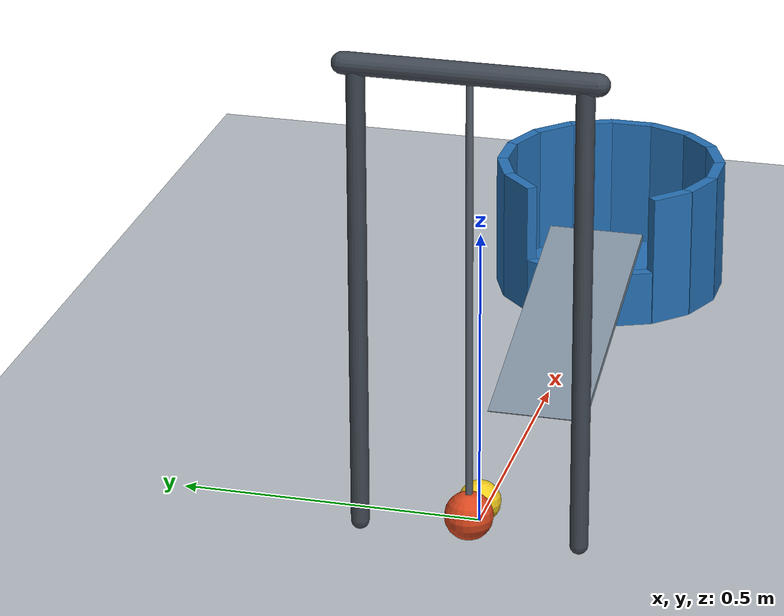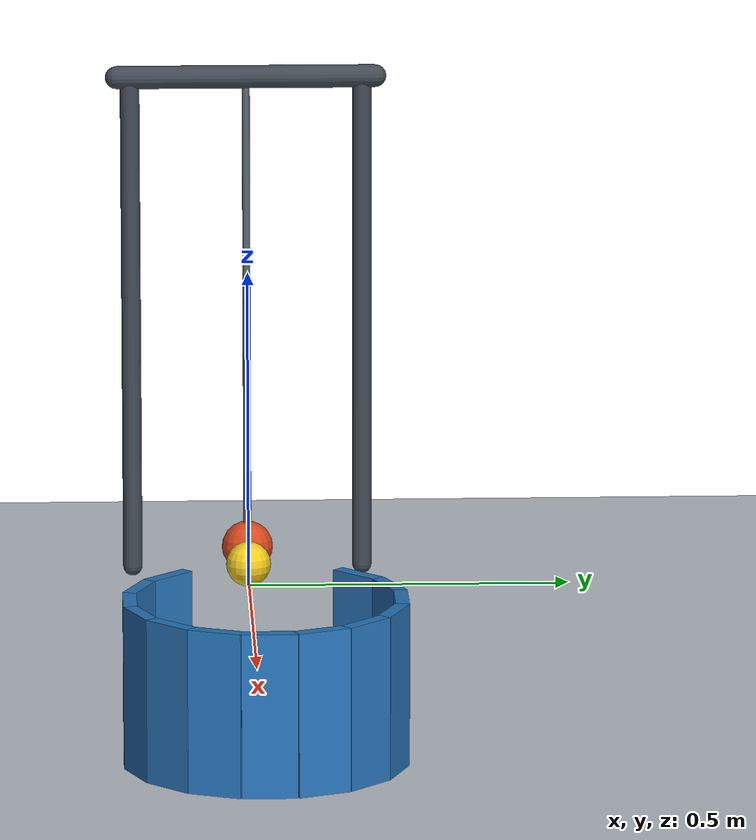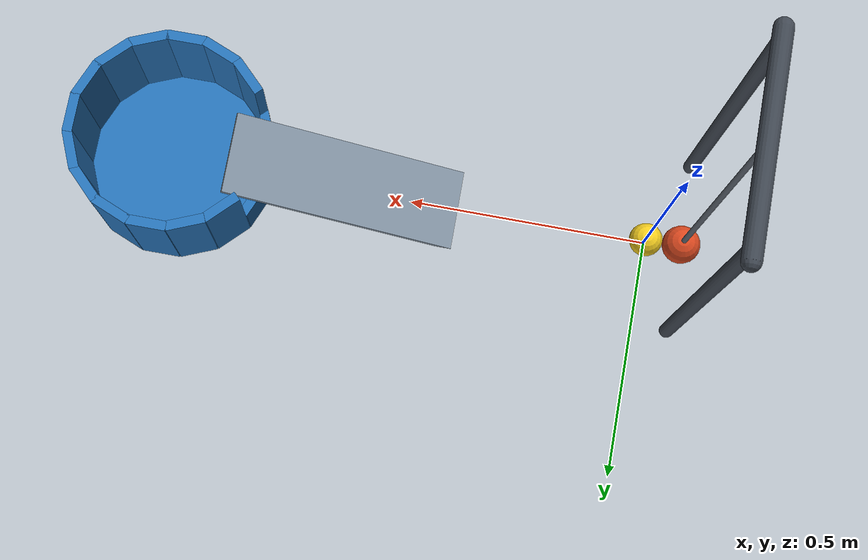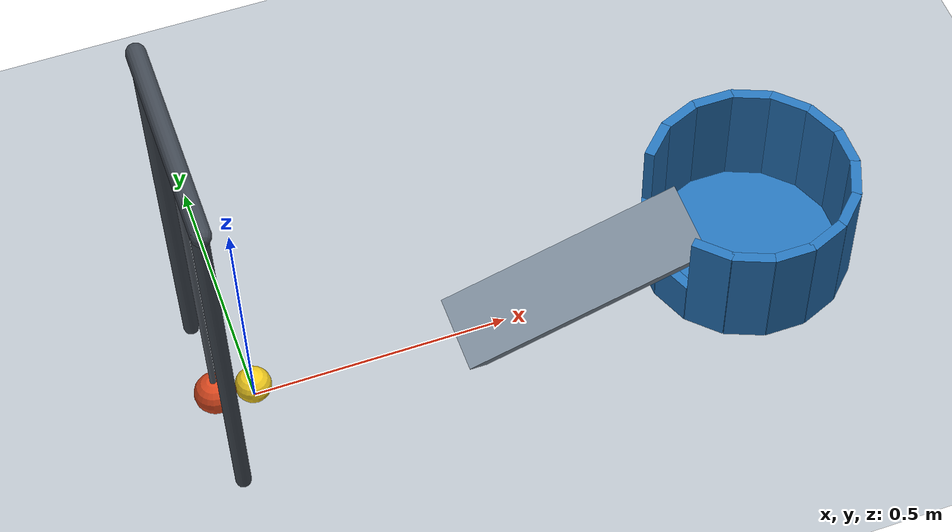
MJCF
<mujoco model="pendulum_ball_into_cup">
  <compiler angle="radian" inertiafromgeom="true"/>
  <option timestep="0.002" gravity="0 0 -9.81" integrator="implicitfast" iterations="100" cone="elliptic"/>
  <size njmax="2000" nconmax="300"/>
  <visual>
    <headlight ambient="0.4 0.4 0.4" diffuse="0.7 0.7 0.7" specular="0.2 0.2 0.2"/>
  </visual>

  <worldbody>
    <light name="overhead_light" pos="0.5 -1 3" dir="0 0 -1"/>
    <geom name="floor" type="plane" size="3 2 0.1" friction="0.5 0.005 0.0001" condim="3" solref="0.005 1" rgba="0.72 0.75 0.78 1"/>

    <body name="stand" pos="-0.073 0 0">
      <geom name="stand_left_post" type="capsule" fromto="0 -0.18 0.015 0 -0.18 0.795" size="0.015" rgba="0.25 0.28 0.32 1"/>
      <geom name="stand_right_post" type="capsule" fromto="0 0.18 0.015 0 0.18 0.795" size="0.015" rgba="0.25 0.28 0.32 1"/>
      <geom name="stand_crossbar" type="capsule" fromto="0 -0.20 0.795 0 0.20 0.795" size="0.018" rgba="0.25 0.28 0.32 1"/>
    </body>

    <!-- Positive hinge angle raises the bob to the left of the ball. -->
    <body name="pendulum" pos="-0.073 0 0.795">
      <joint name="pendulum_hinge" type="hinge" axis="0 1 0" damping="0.003"/>
      <geom name="pendulum_rod" type="capsule" fromto="0 0 -0.015 0 0 -0.715" size="0.006" mass="0.025" friction="0.5 0.005 0.0001" solref="0.005 1" rgba="0.35 0.38 0.42 1"/>
      <geom name="pendulum_bob" type="sphere" pos="0 0 -0.75" size="0.04" mass="0.6" friction="0.5 0.005 0.0001" solref="0.005 1" rgba="0.85 0.28 0.12 1"/>
    </body>

    <body name="ball" pos="0 0 0.035">
      <freejoint name="ball_free"/>
      <geom name="ball" type="sphere" size="0.035" mass="0.04" friction="0.5 0.005 0.0001" condim="3" solref="0.005 1" rgba="0.95 0.8 0.12 1"/>
    </body>

    <!-- The ramp rises from floor level and bridges the cup's low front rim. -->
    <body name="entry_ramp" pos="0 0 0">
      <geom name="entry_ramp_surface" type="box" pos="0.641790 0 0.069273" euler="0 -0.302885 0" size="0.251446 0.085 0.006" friction="0.6 0.005 0.0001" condim="3" solref="0.005 1" rgba="0.50 0.56 0.62 1"/>
    </body>

    <!-- Cup centre is 1 m along the floor from the ball's starting location. -->
    <!-- Primitive wall segments form a closed cup with a lowered entrance rim. -->
    <body name="cup" pos="1 0 0">
      <geom name="cup_bottom" type="cylinder" pos="0 0 0.003" size="0.205 0.003" friction="0.8 0.01 0.002" condim="6" solref="0.005 1" rgba="0.15 0.45 0.72 1"/>

      <geom name="cup_wall_00" type="box" pos="0.195000 0 0.120" euler="0 0 0" size="0.010 0.040 0.120" friction="0.8 0.01 0.002" condim="6" solref="0.005 1" rgba="0.15 0.45 0.72 1"/>
      <geom name="cup_wall_01" type="box" pos="0.180157 0.074624 0.120" euler="0 0 0.392699" size="0.010 0.040 0.120" friction="0.8 0.01 0.002" condim="6" solref="0.005 1" rgba="0.15 0.45 0.72 1"/>
      <geom name="cup_wall_02" type="box" pos="0.137886 0.137886 0.120" euler="0 0 0.785398" size="0.010 0.040 0.120" friction="0.8 0.01 0.002" condim="6" solref="0.005 1" rgba="0.15 0.45 0.72 1"/>
      <geom name="cup_wall_03" type="box" pos="0.074624 0.180157 0.120" euler="0 0 1.178097" size="0.010 0.040 0.120" friction="0.8 0.01 0.002" condim="6" solref="0.005 1" rgba="0.15 0.45 0.72 1"/>
      <geom name="cup_wall_04" type="box" pos="0 0.195000 0.120" euler="0 0 1.570796" size="0.010 0.040 0.120" friction="0.8 0.01 0.002" condim="6" solref="0.005 1" rgba="0.15 0.45 0.72 1"/>
      <geom name="cup_wall_05" type="box" pos="-0.074624 0.180157 0.120" euler="0 0 1.963495" size="0.010 0.040 0.120" friction="0.8 0.01 0.002" condim="6" solref="0.005 1" rgba="0.15 0.45 0.72 1"/>
      <geom name="cup_wall_06" type="box" pos="-0.137886 0.137886 0.120" euler="0 0 2.356194" size="0.010 0.040 0.120" friction="0.8 0.01 0.002" condim="6" solref="0.005 1" rgba="0.15 0.45 0.72 1"/>

      <geom name="cup_wall_07" type="box" pos="-0.180157 0.074624 0.050" euler="0 0 2.748894" size="0.010 0.040 0.050" friction="0.8 0.01 0.002" condim="6" solref="0.005 1" rgba="0.15 0.45 0.72 1"/>
      <geom name="cup_wall_08" type="box" pos="-0.195000 0 0.050" euler="0 0 3.141593" size="0.010 0.040 0.050" friction="0.8 0.01 0.002" condim="6" solref="0.005 1" rgba="0.15 0.45 0.72 1"/>
      <geom name="cup_wall_09" type="box" pos="-0.180157 -0.074624 0.050" euler="0 0 3.534292" size="0.010 0.040 0.050" friction="0.8 0.01 0.002" condim="6" solref="0.005 1" rgba="0.15 0.45 0.72 1"/>

      <geom name="cup_wall_10" type="box" pos="-0.137886 -0.137886 0.120" euler="0 0 3.926991" size="0.010 0.040 0.120" friction="0.8 0.01 0.002" condim="6" solref="0.005 1" rgba="0.15 0.45 0.72 1"/>
      <geom name="cup_wall_11" type="box" pos="-0.074624 -0.180157 0.120" euler="0 0 4.319690" size="0.010 0.040 0.120" friction="0.8 0.01 0.002" condim="6" solref="0.005 1" rgba="0.15 0.45 0.72 1"/>
      <geom name="cup_wall_12" type="box" pos="0 -0.195000 0.120" euler="0 0 4.712389" size="0.010 0.040 0.120" friction="0.8 0.01 0.002" condim="6" solref="0.005 1" rgba="0.15 0.45 0.72 1"/>
      <geom name="cup_wall_13" type="box" pos="0.074624 -0.180157 0.120" euler="0 0 5.105088" size="0.010 0.040 0.120" friction="0.8 0.01 0.002" condim="6" solref="0.005 1" rgba="0.15 0.45 0.72 1"/>
      <geom name="cup_wall_14" type="box" pos="0.137886 -0.137886 0.120" euler="0 0 5.497787" size="0.010 0.040 0.120" friction="0.8 0.01 0.002" condim="6" solref="0.005 1" rgba="0.15 0.45 0.72 1"/>
      <geom name="cup_wall_15" type="box" pos="0.180157 -0.074624 0.120" euler="0 0 5.890486" size="0.010 0.040 0.120" friction="0.8 0.01 0.002" condim="6" solref="0.005 1" rgba="0.15 0.45 0.72 1"/>
    </body>
  </worldbody>

  <keyframe>
    <key name="start" qpos="1.3 0 0 0.035 1 0 0 0" qvel="0 0 0 0 0 0 0"/>
  </keyframe>
</mujoco>
